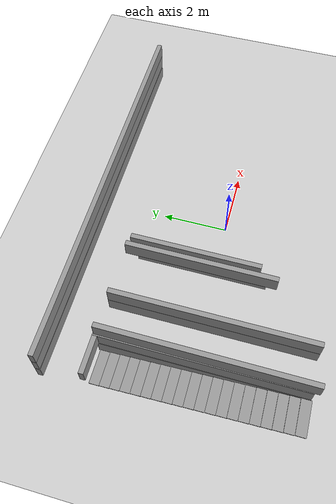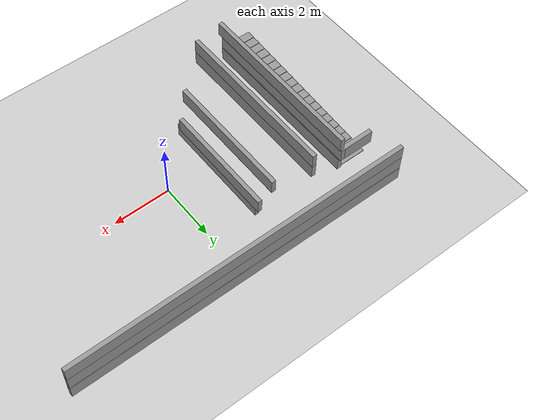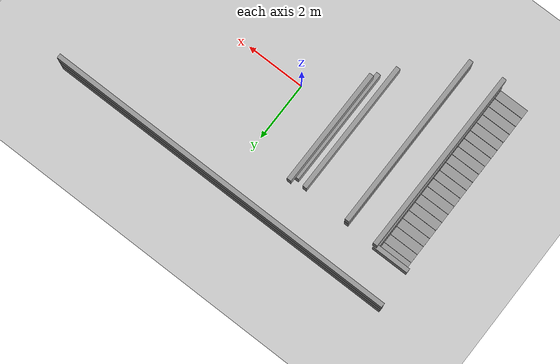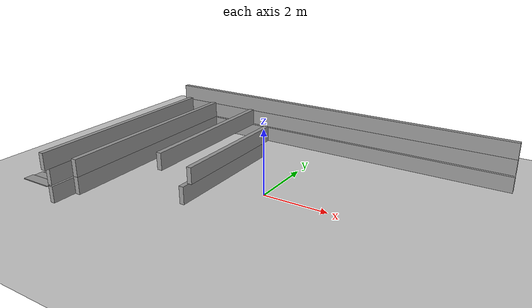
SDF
<sdf version="1.7">
 <world name="default">
  <model name="ground_plane">
   <static>1</static>
   <link name="link">
    <collision name="collision">
     <geometry><plane><normal>0 0 1</normal><size>100 100</size></plane></geometry>
     <surface>
      <contact><collide_bitmask>65535</collide_bitmask></contact>
      <friction><ode><mu>100</mu><mu2>50</mu2></ode></friction>
     </surface>
    </collision>
    <visual name="visual">
     <cast_shadows>0</cast_shadows>
     <geometry><plane><normal>0 0 1</normal><size>100 100</size></plane></geometry>
     <material>
      <script><uri>file://media/materials/scripts/gazebo.material</uri><name>Gazebo/Grey</name></script>
     </material>
    </visual>
   </link>
  </model>
  <model name="builing1">
   <pose>0.045986 -0.516202 0 0 -0 0</pose>
   <link name="Stairs_1">
    <visual name="Stairs_1_Visual_0">
     <pose>-5.39762 2.9009 0.0125 0 -0 0</pose>
     <geometry><box><size>1 0.3 0.025</size></box></geometry>
     <material>
      <script><uri>file://media/materials/scripts/gazebo.material</uri><name>Gazebo/Grey</name></script>
      <ambient>1 1 1 1</ambient>
     </material>
     <meta><layer>0</layer></meta>
    </visual>
    <collision name="Stairs_1_Collision_0">
     <geometry><box><size>1 0.3 0.025</size></box></geometry>
     <pose>-5.39762 2.9009 0.0125 0 -0 0</pose>
    </collision>
    <visual name="Stairs_1_Visual_1">
     <pose>-5.39762 2.6009 0.0375 0 -0 0</pose>
     <geometry><box><size>1 0.3 0.025</size></box></geometry>
     <material>
      <script><uri>file://media/materials/scripts/gazebo.material</uri><name>Gazebo/Grey</name></script>
      <ambient>1 1 1 1</ambient>
     </material>
     <meta><layer>0</layer></meta>
    </visual>
    <collision name="Stairs_1_Collision_1">
     <geometry><box><size>1 0.3 0.025</size></box></geometry>
     <pose>-5.39762 2.6009 0.0375 0 -0 0</pose>
    </collision>
    <visual name="Stairs_1_Visual_2">
     <pose>-5.39762 2.3009 0.0625 0 -0 0</pose>
     <geometry><box><size>1 0.3 0.025</size></box></geometry>
     <material>
      <script><uri>file://media/materials/scripts/gazebo.material</uri><name>Gazebo/Grey</name></script>
      <ambient>1 1 1 1</ambient>
     </material>
     <meta><layer>0</layer></meta>
    </visual>
    <collision name="Stairs_1_Collision_2">
     <geometry><box><size>1 0.3 0.025</size></box></geometry>
     <pose>-5.39762 2.3009 0.0625 0 -0 0</pose>
    </collision>
    <visual name="Stairs_1_Visual_3">
     <pose>-5.39762 2.0009 0.0875 0 -0 0</pose>
     <geometry><box><size>1 0.3 0.025</size></box></geometry>
     <material>
      <script><uri>file://media/materials/scripts/gazebo.material</uri><name>Gazebo/Grey</name></script>
      <ambient>1 1 1 1</ambient>
     </material>
     <meta><layer>0</layer></meta>
    </visual>
    <collision name="Stairs_1_Collision_3">
     <geometry><box><size>1 0.3 0.025</size></box></geometry>
     <pose>-5.39762 2.0009 0.0875 0 -0 0</pose>
    </collision>
    <visual name="Stairs_1_Visual_4">
     <pose>-5.39762 1.7009 0.1125 0 -0 0</pose>
     <geometry><box><size>1 0.3 0.025</size></box></geometry>
     <material>
      <script><uri>file://media/materials/scripts/gazebo.material</uri><name>Gazebo/Grey</name></script>
      <ambient>1 1 1 1</ambient>
     </material>
     <meta><layer>0</layer></meta>
    </visual>
    <collision name="Stairs_1_Collision_4">
     <geometry><box><size>1 0.3 0.025</size></box></geometry>
     <pose>-5.39762 1.7009 0.1125 0 -0 0</pose>
    </collision>
    <visual name="Stairs_1_Visual_5">
     <pose>-5.39762 1.4009 0.1375 0 -0 0</pose>
     <geometry><box><size>1 0.3 0.025</size></box></geometry>
     <material>
      <script><uri>file://media/materials/scripts/gazebo.material</uri><name>Gazebo/Grey</name></script>
      <ambient>1 1 1 1</ambient>
     </material>
     <meta><layer>0</layer></meta>
    </visual>
    <collision name="Stairs_1_Collision_5">
     <geometry><box><size>1 0.3 0.025</size></box></geometry>
     <pose>-5.39762 1.4009 0.1375 0 -0 0</pose>
    </collision>
    <visual name="Stairs_1_Visual_6">
     <pose>-5.39762 1.1009 0.1625 0 -0 0</pose>
     <geometry><box><size>1 0.3 0.025</size></box></geometry>
     <material>
      <script><uri>file://media/materials/scripts/gazebo.material</uri><name>Gazebo/Grey</name></script>
      <ambient>1 1 1 1</ambient>
     </material>
     <meta><layer>0</layer></meta>
    </visual>
    <collision name="Stairs_1_Collision_6">
     <geometry><box><size>1 0.3 0.025</size></box></geometry>
     <pose>-5.39762 1.1009 0.1625 0 -0 0</pose>
    </collision>
    <visual name="Stairs_1_Visual_7">
     <pose>-5.39762 0.800901 0.1875 0 -0 0</pose>
     <geometry><box><size>1 0.3 0.025</size></box></geometry>
     <material>
      <script><uri>file://media/materials/scripts/gazebo.material</uri><name>Gazebo/Grey</name></script>
      <ambient>1 1 1 1</ambient>
     </material>
     <meta><layer>0</layer></meta>
    </visual>
    <collision name="Stairs_1_Collision_7">
     <geometry><box><size>1 0.3 0.025</size></box></geometry>
     <pose>-5.39762 0.800901 0.1875 0 -0 0</pose>
    </collision>
    <visual name="Stairs_1_Visual_8">
     <pose>-5.39762 0.500901 0.2125 0 -0 0</pose>
     <geometry><box><size>1 0.3 0.025</size></box></geometry>
     <material>
      <script><uri>file://media/materials/scripts/gazebo.material</uri><name>Gazebo/Grey</name></script>
      <ambient>1 1 1 1</ambient>
     </material>
     <meta><layer>0</layer></meta>
    </visual>
    <collision name="Stairs_1_Collision_8">
     <geometry><box><size>1 0.3 0.025</size></box></geometry>
     <pose>-5.39762 0.500901 0.2125 0 -0 0</pose>
    </collision>
    <visual name="Stairs_1_Visual_9">
     <pose>-5.39762 0.200901 0.2375 0 -0 0</pose>
     <geometry><box><size>1 0.3 0.025</size></box></geometry>
     <material>
      <script><uri>file://media/materials/scripts/gazebo.material</uri><name>Gazebo/Grey</name></script>
      <ambient>1 1 1 1</ambient>
     </material>
     <meta><layer>0</layer></meta>
    </visual>
    <collision name="Stairs_1_Collision_9">
     <geometry><box><size>1 0.3 0.025</size></box></geometry>
     <pose>-5.39762 0.200901 0.2375 0 -0 0</pose>
    </collision>
    <visual name="Stairs_1_Visual_10">
     <pose>-5.39762 -0.0991 0.2625 0 -0 0</pose>
     <geometry><box><size>1 0.3 0.025</size></box></geometry>
     <material>
      <script><uri>file://media/materials/scripts/gazebo.material</uri><name>Gazebo/Grey</name></script>
      <ambient>1 1 1 1</ambient>
     </material>
     <meta><layer>0</layer></meta>
    </visual>
    <collision name="Stairs_1_Collision_10">
     <geometry><box><size>1 0.3 0.025</size></box></geometry>
     <pose>-5.39762 -0.0991 0.2625 0 -0 0</pose>
    </collision>
    <visual name="Stairs_1_Visual_11">
     <pose>-5.39762 -0.399099 0.2875 0 -0 0</pose>
     <geometry><box><size>1 0.3 0.025</size></box></geometry>
     <material>
      <script><uri>file://media/materials/scripts/gazebo.material</uri><name>Gazebo/Grey</name></script>
      <ambient>1 1 1 1</ambient>
     </material>
     <meta><layer>0</layer></meta>
    </visual>
    <collision name="Stairs_1_Collision_11">
     <geometry><box><size>1 0.3 0.025</size></box></geometry>
     <pose>-5.39762 -0.399099 0.2875 0 -0 0</pose>
    </collision>
    <visual name="Stairs_1_Visual_12">
     <pose>-5.39762 -0.699099 0.3125 0 -0 0</pose>
     <geometry><box><size>1 0.3 0.025</size></box></geometry>
     <material>
      <script><uri>file://media/materials/scripts/gazebo.material</uri><name>Gazebo/Grey</name></script>
      <ambient>1 1 1 1</ambient>
     </material>
     <meta><layer>0</layer></meta>
    </visual>
    <collision name="Stairs_1_Collision_12">
     <geometry><box><size>1 0.3 0.025</size></box></geometry>
     <pose>-5.39762 -0.699099 0.3125 0 -0 0</pose>
    </collision>
    <visual name="Stairs_1_Visual_13">
     <pose>-5.39762 -0.999099 0.3375 0 -0 0</pose>
     <geometry><box><size>1 0.3 0.025</size></box></geometry>
     <material>
      <script><uri>file://media/materials/scripts/gazebo.material</uri><name>Gazebo/Grey</name></script>
      <ambient>1 1 1 1</ambient>
     </material>
     <meta><layer>0</layer></meta>
    </visual>
    <collision name="Stairs_1_Collision_13">
     <geometry><box><size>1 0.3 0.025</size></box></geometry>
     <pose>-5.39762 -0.999099 0.3375 0 -0 0</pose>
    </collision>
    <visual name="Stairs_1_Visual_14">
     <pose>-5.39762 -1.2991 0.3625 0 -0 0</pose>
     <geometry><box><size>1 0.3 0.025</size></box></geometry>
     <material>
      <script><uri>file://media/materials/scripts/gazebo.material</uri><name>Gazebo/Grey</name></script>
      <ambient>1 1 1 1</ambient>
     </material>
     <meta><layer>0</layer></meta>
    </visual>
    <collision name="Stairs_1_Collision_14">
     <geometry><box><size>1 0.3 0.025</size></box></geometry>
     <pose>-5.39762 -1.2991 0.3625 0 -0 0</pose>
    </collision>
    <visual name="Stairs_1_Visual_15">
     <pose>-5.39762 -1.5991 0.3875 0 -0 0</pose>
     <geometry><box><size>1 0.3 0.025</size></box></geometry>
     <material>
      <script><uri>file://media/materials/scripts/gazebo.material</uri><name>Gazebo/Grey</name></script>
      <ambient>1 1 1 1</ambient>
     </material>
     <meta><layer>0</layer></meta>
    </visual>
    <collision name="Stairs_1_Collision_15">
     <geometry><box><size>1 0.3 0.025</size></box></geometry>
     <pose>-5.39762 -1.5991 0.3875 0 -0 0</pose>
    </collision>
    <visual name="Stairs_1_Visual_16">
     <pose>-5.39762 -1.8991 0.4125 0 -0 0</pose>
     <geometry><box><size>1 0.3 0.025</size></box></geometry>
     <material>
      <script><uri>file://media/materials/scripts/gazebo.material</uri><name>Gazebo/Grey</name></script>
      <ambient>1 1 1 1</ambient>
     </material>
     <meta><layer>0</layer></meta>
    </visual>
    <collision name="Stairs_1_Collision_16">
     <geometry><box><size>1 0.3 0.025</size></box></geometry>
     <pose>-5.39762 -1.8991 0.4125 0 -0 0</pose>
    </collision>
    <visual name="Stairs_1_Visual_17">
     <pose>-5.39762 -2.1991 0.4375 0 -0 0</pose>
     <geometry><box><size>1 0.3 0.025</size></box></geometry>
     <material>
      <script><uri>file://media/materials/scripts/gazebo.material</uri><name>Gazebo/Grey</name></script>
      <ambient>1 1 1 1</ambient>
     </material>
     <meta><layer>0</layer></meta>
    </visual>
    <collision name="Stairs_1_Collision_17">
     <geometry><box><size>1 0.3 0.025</size></box></geometry>
     <pose>-5.39762 -2.1991 0.4375 0 -0 0</pose>
    </collision>
    <visual name="Stairs_1_Visual_18">
     <pose>-5.39762 -2.4991 0.4625 0 -0 0</pose>
     <geometry><box><size>1 0.3 0.025</size></box></geometry>
     <material>
      <script><uri>file://media/materials/scripts/gazebo.material</uri><name>Gazebo/Grey</name></script>
      <ambient>1 1 1 1</ambient>
     </material>
     <meta><layer>0</layer></meta>
    </visual>
    <collision name="Stairs_1_Collision_18">
     <geometry><box><size>1 0.3 0.025</size></box></geometry>
     <pose>-5.39762 -2.4991 0.4625 0 -0 0</pose>
    </collision>
    <visual name="Stairs_1_Visual_19">
     <pose>-5.39762 -2.7991 0.4875 0 -0 0</pose>
     <geometry><box><size>1 0.3 0.025</size></box></geometry>
     <material>
      <script><uri>file://media/materials/scripts/gazebo.material</uri><name>Gazebo/Grey</name></script>
      <ambient>1 1 1 1</ambient>
     </material>
     <meta><layer>0</layer></meta>
    </visual>
    <collision name="Stairs_1_Collision_19">
     <geometry><box><size>1 0.3 0.025</size></box></geometry>
     <pose>-5.39762 -2.7991 0.4875 0 -0 0</pose>
    </collision>
   </link>
   <link name="Wall_13">
    <collision name="Wall_13_Collision">
     <geometry><box><size>4 0.15 0.54</size></box></geometry>
     <pose>0 0 0.27 0 -0 0</pose>
    </collision>
    <visual name="Wall_13_Visual">
     <pose>0 0 0.27 0 -0 0</pose>
     <geometry><box><size>4 0.15 0.54</size></box></geometry>
     <material>
      <script><uri>file://media/materials/scripts/gazebo.material</uri><name>Gazebo/Grey</name></script>
      <ambient>1 1 1 1</ambient>
     </material>
     <meta><layer>0</layer></meta>
    </visual>
    <pose>-1.69396 0.882 0 0 -0 1.5708</pose>
   </link>
   <link name="Wall_25">
    <collision name="Wall_25_Collision">
     <geometry><box><size>12 0.15 0.5</size></box></geometry>
     <pose>0 0 0.25 0 -0 0</pose>
    </collision>
    <visual name="Wall_25_Visual">
     <pose>0 0 0.25 0 -0 0</pose>
     <geometry><box><size>12 0.15 0.5</size></box></geometry>
     <material>
      <script><uri>file://media/materials/scripts/gazebo.material</uri><name>Gazebo/Grey</name></script>
      <ambient>1 1 1 1</ambient>
     </material>
     <meta><layer>1</layer></meta>
    </visual>
    <pose>-0.031956 4.425 0.54 0 -0 3.14159</pose>
   </link>
   <link name="Wall_26">
    <collision name="Wall_26_Collision">
     <geometry><box><size>6.10648 0.15 0.5</size></box></geometry>
     <pose>0 0 0.25 0 -0 0</pose>
    </collision>
    <visual name="Wall_26_Visual">
     <pose>0 0 0.25 0 -0 0</pose>
     <geometry><box><size>6.10648 0.15 0.5</size></box></geometry>
     <material>
      <script><uri>file://media/materials/scripts/gazebo.material</uri><name>Gazebo/Grey</name></script>
      <ambient>1 1 1 1</ambient>
     </material>
     <meta><layer>1</layer></meta>
    </visual>
    <pose>-4.81796 0.143 0.54 0 -0 -1.5708</pose>
   </link>
   <link name="Wall_34">
    <collision name="Wall_34_Collision">
     <geometry><box><size>1.25 0.15 0.5</size></box></geometry>
     <pose>0 0 0.25 0 -0 0</pose>
    </collision>
    <visual name="Wall_34_Visual">
     <pose>0 0 0.25 0 -0 0</pose>
     <geometry><box><size>1.25 0.15 0.5</size></box></geometry>
     <material>
      <script><uri>file://media/materials/scripts/gazebo.material</uri><name>Gazebo/Grey</name></script>
      <ambient>1 1 1 1</ambient>
     </material>
     <meta><layer>1</layer></meta>
    </visual>
    <pose>-5.36796 3.121 0.54 0 -0 3.14159</pose>
   </link>
   <link name="Wall_38">
    <collision name="Wall_38_Collision">
     <geometry><box><size>6 0.15 0.5</size></box></geometry>
     <pose>0 0 0.25 0 -0 0</pose>
    </collision>
    <visual name="Wall_38_Visual">
     <pose>0 0 0.25 0 -0 0</pose>
     <geometry><box><size>6 0.15 0.5</size></box></geometry>
     <material>
      <script><uri>file://media/materials/scripts/gazebo.material</uri><name>Gazebo/Grey</name></script>
      <ambient>1 1 1 1</ambient>
     </material>
     <meta><layer>1</layer></meta>
    </visual>
    <pose>-3.70896 0.107 0.54 0 -0 -1.5708</pose>
   </link>
   <link name="Wall_49">
    <collision name="Wall_49_Collision">
     <geometry><box><size>4 0.15 0.5</size></box></geometry>
     <pose>0 0 0.25 0 -0 0</pose>
    </collision>
    <visual name="Wall_49_Visual">
     <pose>0 0 0.25 0 -0 0</pose>
     <geometry><box><size>4 0.15 0.5</size></box></geometry>
     <material>
      <script><uri>file://media/materials/scripts/gazebo.material</uri><name>Gazebo/Grey</name></script>
      <ambient>1 1 1 1</ambient>
     </material>
     <meta><layer>1</layer></meta>
    </visual>
    <pose>-1.59745 1.13 0.54 0 -0 -1.5708</pose>
   </link>
   <link name="Wall_5">
    <collision name="Wall_5_Collision">
     <geometry><box><size>12 0.15 0.5</size></box></geometry>
     <pose>0 0 0.25 0 -0 0</pose>
    </collision>
    <visual name="Wall_5_Visual">
     <pose>0 0 0.25 0 -0 0</pose>
     <geometry><box><size>12 0.15 0.5</size></box></geometry>
     <material>
      <script><uri>file://media/materials/scripts/gazebo.material</uri><name>Gazebo/Grey</name></script>
      <ambient>1 1 1 1</ambient>
     </material>
     <meta><layer>0</layer></meta>
    </visual>
    <pose>-0.031956 4.425 0 0 -0 3.14159</pose>
   </link>
   <link name="Wall_54">
    <collision name="Wall_54_Collision">
     <geometry><box><size>12 0.15 0.5</size></box></geometry>
     <pose>0 0 0.25 0 -0 0</pose>
    </collision>
    <visual name="Wall_54_Visual">
     <pose>0 0 0.25 0 -0 0</pose>
     <geometry><box><size>12 0.15 0.5</size></box></geometry>
     <material>
      <script><uri>file://media/materials/scripts/gazebo.material</uri><name>Gazebo/Grey</name></script>
      <ambient>1 1 1 1</ambient>
     </material>
     <meta><layer>2</layer></meta>
    </visual>
    <pose>-0.031956 4.425 1.04 0 -0 3.14159</pose>
   </link>
   <link name="Wall_59">
    <collision name="Wall_59_Collision">
     <geometry><box><size>6 0.15 0.5</size></box></geometry>
     <pose>0 0 0.25 0 -0 0</pose>
    </collision>
    <visual name="Wall_59_Visual">
     <pose>0 0 0.25 0 -0 0</pose>
     <geometry><box><size>6 0.15 0.5</size></box></geometry>
     <material>
      <script><uri>file://media/materials/scripts/gazebo.material</uri><name>Gazebo/Grey</name></script>
      <ambient>1 1 1 1</ambient>
     </material>
     <meta><layer>2</layer></meta>
    </visual>
    <pose>-3.70896 0.107 1.04 0 -0 -1.5708</pose>
   </link>
   <link name="Wall_64">
    <collision name="Wall_64_Collision">
     <geometry><box><size>6.22027 0.15 0.5</size></box></geometry>
     <pose>0 0 0.25 0 -0 0</pose>
    </collision>
    <visual name="Wall_64_Visual">
     <pose>0 0 0.25 0 -0 0</pose>
     <geometry><box><size>6.22027 0.15 0.5</size></box></geometry>
     <material>
      <script><uri>file://media/materials/scripts/gazebo.material</uri><name>Gazebo/Grey</name></script>
      <ambient>1 1 1 1</ambient>
     </material>
     <meta><layer>2</layer></meta>
    </visual>
    <pose>-4.78845 0.052 1.04 0 -0 -1.57426</pose>
   </link>
   <link name="Wall_68">
    <collision name="Wall_68_Collision">
     <geometry><box><size>4.49977 0.15 0.5</size></box></geometry>
     <pose>0 0 0.25 0 -0 0</pose>
    </collision>
    <visual name="Wall_68_Visual">
     <pose>0 0 0.25 0 -0 0</pose>
     <geometry><box><size>4.49977 0.15 0.5</size></box></geometry>
     <material>
      <script><uri>file://media/materials/scripts/gazebo.material</uri><name>Gazebo/Grey</name></script>
      <ambient>1 1 1 1</ambient>
     </material>
     <meta><layer>2</layer></meta>
    </visual>
    <pose>-2.14296 0.84 1.04 0 -0 -1.5708</pose>
   </link>
   <link name="Wall_7">
    <collision name="Wall_7_Collision">
     <geometry><box><size>6 0.15 0.5</size></box></geometry>
     <pose>0 0 0.25 0 -0 0</pose>
    </collision>
    <visual name="Wall_7_Visual">
     <pose>0 0 0.25 0 -0 0</pose>
     <geometry><box><size>6 0.15 0.5</size></box></geometry>
     <material>
      <script><uri>file://media/materials/scripts/gazebo.material</uri><name>Gazebo/Grey</name></script>
      <ambient>1 1 1 1</ambient>
     </material>
     <meta><layer>0</layer></meta>
    </visual>
    <pose>-4.81796 0.09 0 0 -0 -1.5708</pose>
   </link>
   <static>1</static>
  </model>
 </world>
</sdf>
